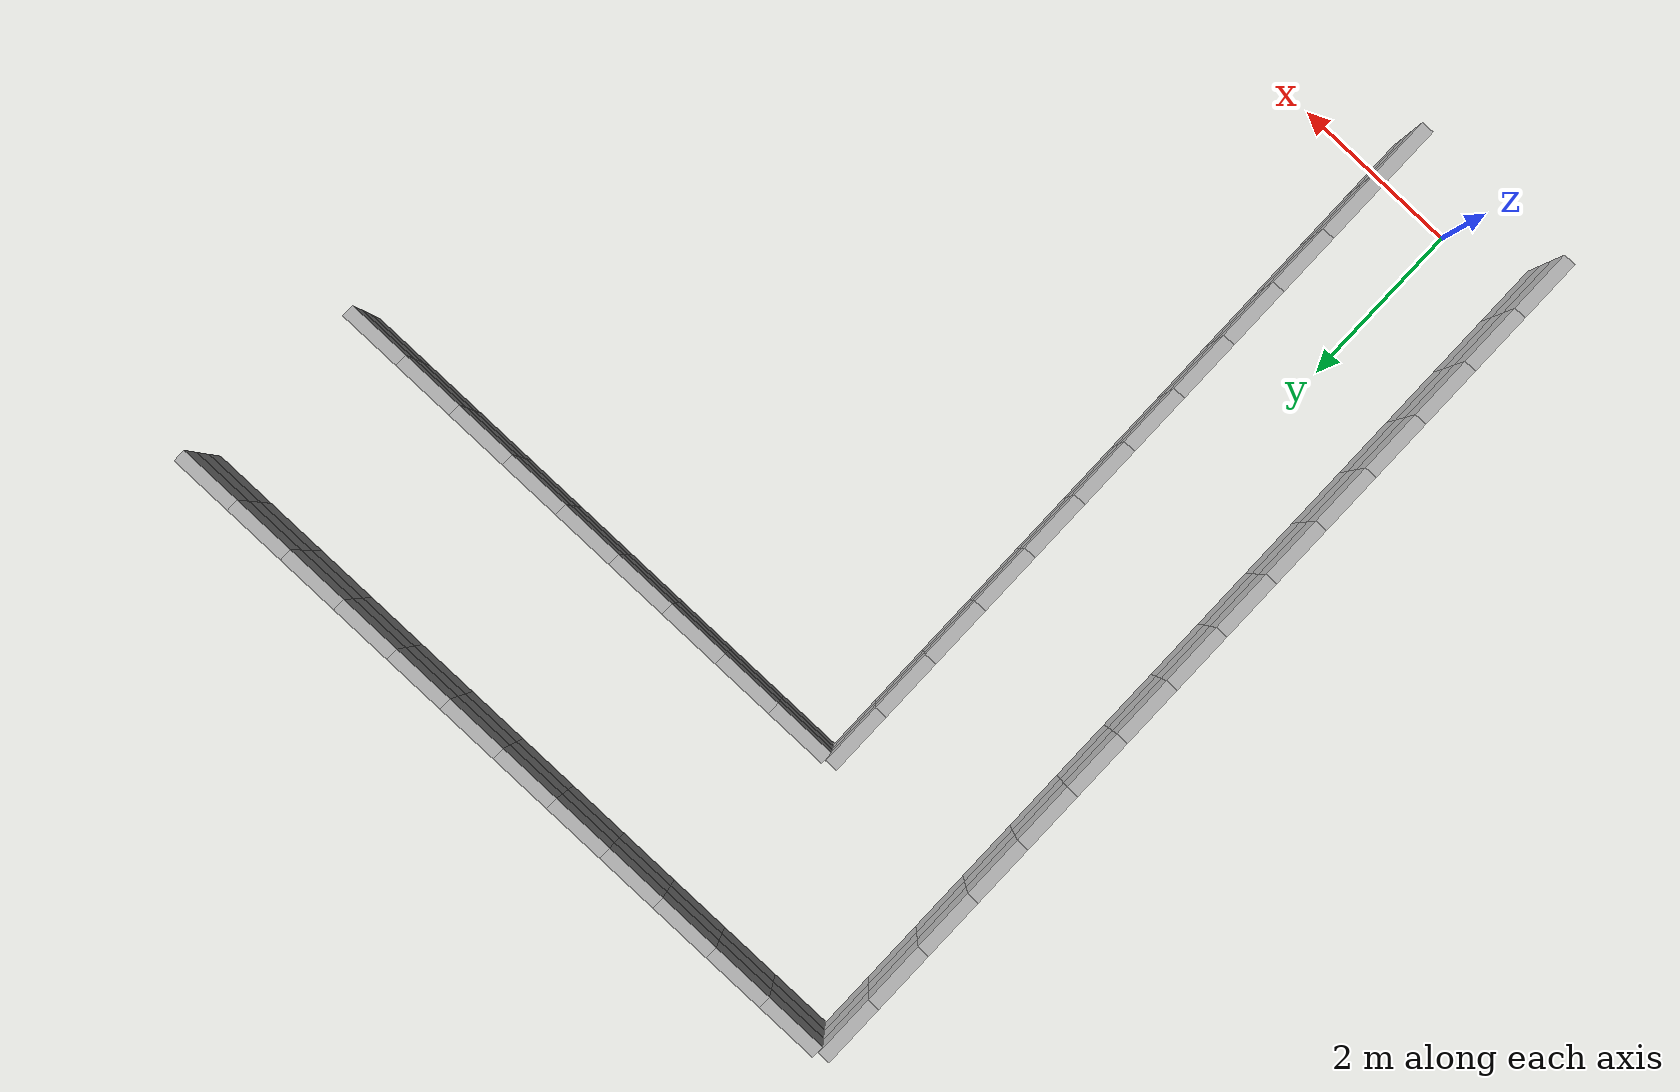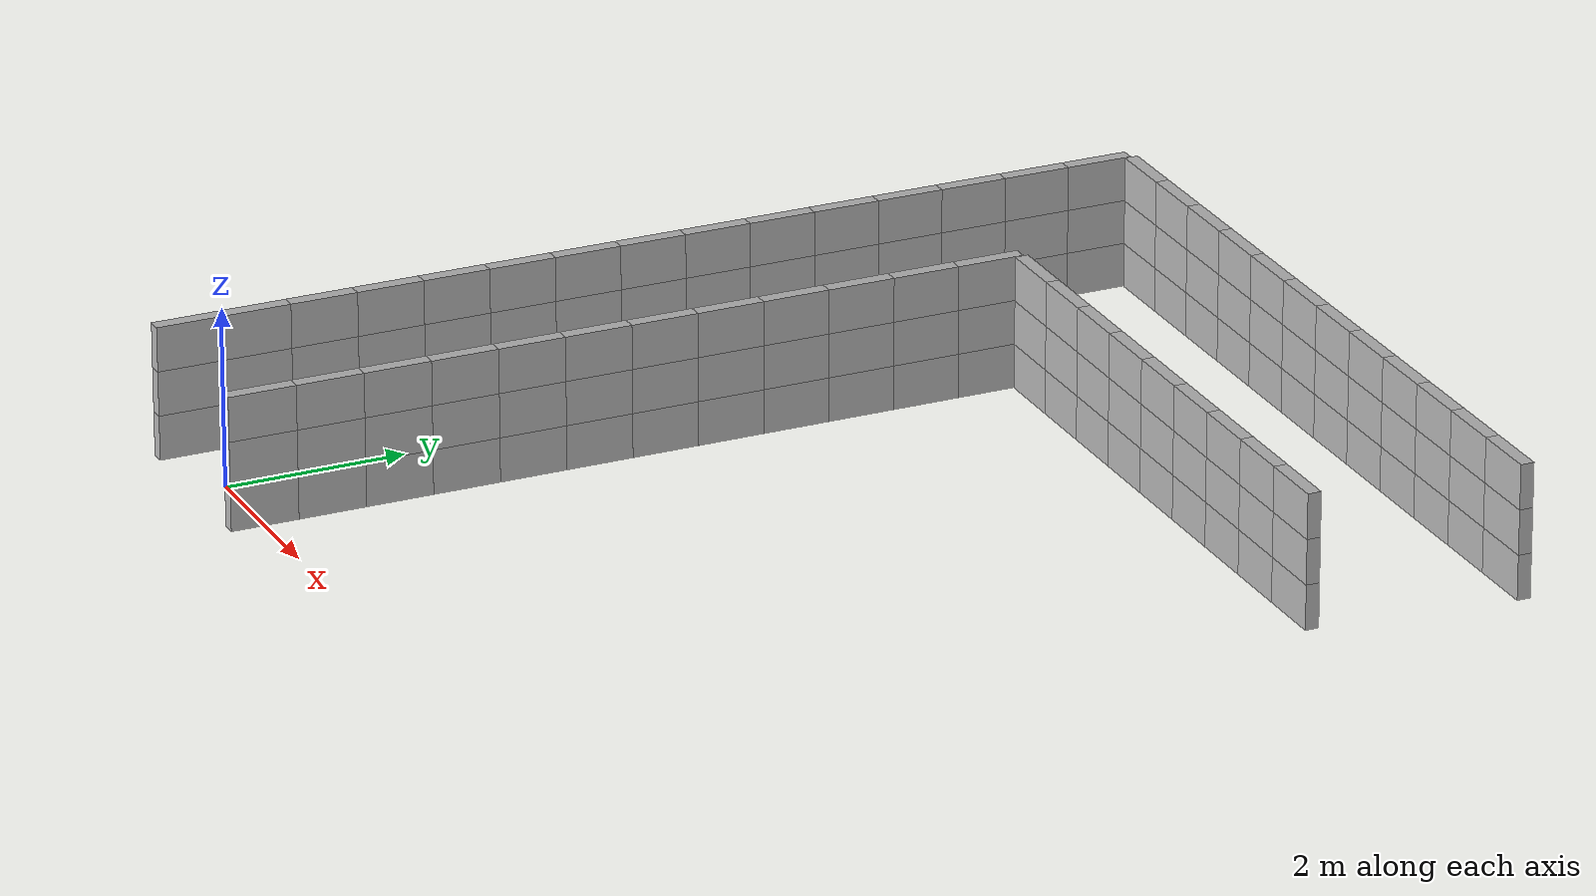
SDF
<sdf version="1.5">
 <world name="L_corridor">
  <include><uri>model://sun</uri></include>
  <include><uri>model://boxes_Lcorridor</uri></include>
 </world>
</sdf>
